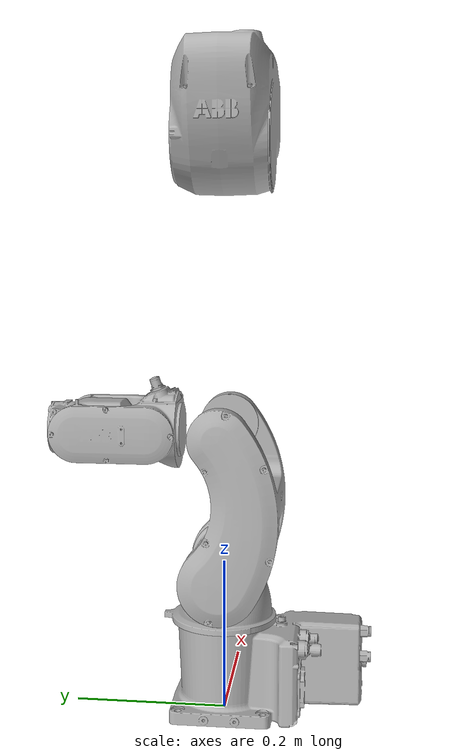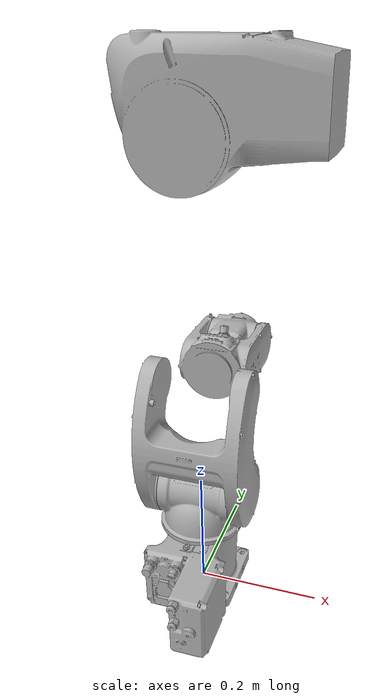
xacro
<?xml version="1.0" ?>
<robot name="IRB1010_1.5kg-370" xmlns:xacro="http://www.ros.org/wiki/xacro">

<xacro:include filename="$(find IRB1010_1.5kg-370_description)/urdf/materials.xacro" />
<xacro:include filename="$(find IRB1010_1.5kg-370_description)/urdf/IRB1010_1.5kg-370.trans" />
<xacro:include filename="$(find IRB1010_1.5kg-370_description)/urdf/IRB1010_1.5kg-370.gazebo" />
<link name="base_link">
  <inertial>
    <origin xyz="0.007414978279902329 -0.0483132373536217 0.05950830185044145" rpy="0 0 0"/>
    <mass value="20.582962138924515"/>
    <inertia ixx="0.107334" iyy="0.048566" izz="0.105477" ixy="0.014261" iyz="0.000746" ixz="0.000141"/>
  </inertial>
  <visual>
    <origin xyz="0 0 0" rpy="0 0 0"/>
    <geometry>
      <mesh filename="package://IRB1010_1.5kg-370_description/meshes/base_link.stl" scale="0.001 0.001 0.001"/>
    </geometry>
    <material name="silver"/>
  </visual>
  <collision>
    <origin xyz="0 0 0" rpy="0 0 0"/>
    <geometry>
      <mesh filename="package://IRB1010_1.5kg-370_description/meshes/base_link.stl" scale="0.001 0.001 0.001"/>
    </geometry>
  </collision>
</link>

<link name="link_1_1">
  <inertial>
    <origin xyz="-0.00024503574590826625 -0.002583028745339163 0.052650029534533266" rpy="0 0 0"/>
    <mass value="9.047546395498204"/>
    <inertia ixx="0.015477" iyy="0.01918" izz="0.016762" ixy="2.4e-05" iyz="-0.000571" ixz="9.9e-05"/>
  </inertial>
  <visual>
    <origin xyz="-0.0 -0.0 -0.123" rpy="0 0 0"/>
    <geometry>
      <mesh filename="package://IRB1010_1.5kg-370_description/meshes/link_1_1.stl" scale="0.001 0.001 0.001"/>
    </geometry>
    <material name="silver"/>
  </visual>
  <collision>
    <origin xyz="-0.0 -0.0 -0.123" rpy="0 0 0"/>
    <geometry>
      <mesh filename="package://IRB1010_1.5kg-370_description/meshes/link_1_1.stl" scale="0.001 0.001 0.001"/>
    </geometry>
  </collision>
</link>

<link name="link_2_1">
  <inertial>
    <origin xyz="0.05849881579894817 -0.02078814771909749 0.07983472523577334" rpy="0 0 0"/>
    <mass value="14.853907261172468"/>
    <inertia ixx="0.072736" iyy="0.128501" izz="0.079727" ixy="3.1e-05" iyz="0.002707" ixz="-0.000418"/>
  </inertial>
  <visual>
    <origin xyz="0.0587 -0.0 -0.19" rpy="0 0 0"/>
    <geometry>
      <mesh filename="package://IRB1010_1.5kg-370_description/meshes/link_2_1.stl" scale="0.001 0.001 0.001"/>
    </geometry>
    <material name="silver"/>
  </visual>
  <collision>
    <origin xyz="0.0587 -0.0 -0.19" rpy="0 0 0"/>
    <geometry>
      <mesh filename="package://IRB1010_1.5kg-370_description/meshes/link_2_1.stl" scale="0.001 0.001 0.001"/>
    </geometry>
  </collision>
</link>

<link name="link_3_1">
  <inertial>
    <origin xyz="-0.06095361971698747 -0.006982971041224326 -0.00021860314485278032" rpy="0 0 0"/>
    <mass value="8.779035232978092"/>
    <inertia ixx="0.016453" iyy="0.012623" izz="0.019253" ixy="-1.7e-05" iyz="4.3e-05" ixz="1.6e-05"/>
  </inertial>
  <visual>
    <origin xyz="-0.0608 -0.0 -0.375" rpy="0 0 0"/>
    <geometry>
      <mesh filename="package://IRB1010_1.5kg-370_description/meshes/link_3_1.stl" scale="0.001 0.001 0.001"/>
    </geometry>
    <material name="silver"/>
  </visual>
  <collision>
    <origin xyz="-0.0608 -0.0 -0.375" rpy="0 0 0"/>
    <geometry>
      <mesh filename="package://IRB1010_1.5kg-370_description/meshes/link_3_1.stl" scale="0.001 0.001 0.001"/>
    </geometry>
  </collision>
</link>

<link name="link_4_1">
  <inertial>
    <origin xyz="0.00124114839469878 0.05600882688570899 0.0017302844145893337" rpy="0 0 0"/>
    <mass value="5.919741496574066"/>
    <inertia ixx="0.013488" iyy="0.011685" izz="0.019333" ixy="-0.000232" iyz="0.000248" ixz="1e-06"/>
  </inertial>
  <visual>
    <origin xyz="-0.0 -0.0553 -0.375" rpy="0 0 0"/>
    <geometry>
      <mesh filename="package://IRB1010_1.5kg-370_description/meshes/link_4_1.stl" scale="0.001 0.001 0.001"/>
    </geometry>
    <material name="silver"/>
  </visual>
  <collision>
    <origin xyz="-0.0 -0.0553 -0.375" rpy="0 0 0"/>
    <geometry>
      <mesh filename="package://IRB1010_1.5kg-370_description/meshes/link_4_1.stl" scale="0.001 0.001 0.001"/>
    </geometry>
  </collision>
</link>

<link name="link_5_1">
  <inertial>
    <origin xyz="0.03963987652528898 -0.012652257482868745 0.00014144085383144267" rpy="0 0 0"/>
    <mass value="3.9451158074034915"/>
    <inertia ixx="0.004666" iyy="0.003309" izz="0.00489" ixy="-2.3e-05" iyz="-2.3e-05" ixz="1.6e-05"/>
  </inertial>
  <visual>
    <origin xyz="0.0405 -0.185 -0.375" rpy="0 0 0"/>
    <geometry>
      <mesh filename="package://IRB1010_1.5kg-370_description/meshes/link_5_1.stl" scale="0.001 0.001 0.001"/>
    </geometry>
    <material name="silver"/>
  </visual>
  <collision>
    <origin xyz="0.0405 -0.185 -0.375" rpy="0 0 0"/>
    <geometry>
      <mesh filename="package://IRB1010_1.5kg-370_description/meshes/link_5_1.stl" scale="0.001 0.001 0.001"/>
    </geometry>
  </collision>
</link>

<link name="link_6_1">
  <inertial>
    <origin xyz="-9.780505496374406e-15 -0.0032215722071038955 -2.4780057653162046e-05" rpy="0 0 0"/>
    <mass value="0.18055793093363143"/>
    <inertia ixx="2.8e-05" iyy="4.4e-05" izz="2.8e-05" ixy="0.0" iyz="-0.0" ixz="0.0"/>
  </inertial>
  <visual>
    <origin xyz="-0.0 -0.2233 -0.375" rpy="0 0 0"/>
    <geometry>
      <mesh filename="package://IRB1010_1.5kg-370_description/meshes/link_6_1.stl" scale="0.001 0.001 0.001"/>
    </geometry>
    <material name="silver"/>
  </visual>
  <collision>
    <origin xyz="-0.0 -0.2233 -0.375" rpy="0 0 0"/>
    <geometry>
      <mesh filename="package://IRB1010_1.5kg-370_description/meshes/link_6_1.stl" scale="0.001 0.001 0.001"/>
    </geometry>
  </collision>
</link>

<joint name="j1" type="continuous">
  <origin xyz="0.0 0.0 0.123" rpy="0 0 0"/>
  <parent link="base_link"/>
  <child link="link_1_1"/>
  <axis xyz="0.0 0.0 -1.0"/>
</joint>

<joint name="j2" type="continuous">
  <origin xyz="-0.0587 0.0 0.067" rpy="0 0 0"/>
  <parent link="link_1_1"/>
  <child link="link_2_1"/>
  <axis xyz="-1.0 0.0 0.0"/>
</joint>

<joint name="j3" type="continuous">
  <origin xyz="0.1195 0.0 0.185" rpy="0 0 0"/>
  <parent link="link_2_1"/>
  <child link="link_3_1"/>
  <axis xyz="-1.0 0.0 0.0"/>
</joint>

<joint name="j4" type="continuous">
  <origin xyz="-0.0608 0.0553 0.0" rpy="0 0 0"/>
  <parent link="link_3_1"/>
  <child link="link_4_1"/>
  <axis xyz="0.0 -1.0 0.0"/>
</joint>

<joint name="j5" type="continuous">
  <origin xyz="-0.0405 0.1297 0.0" rpy="0 0 0"/>
  <parent link="link_4_1"/>
  <child link="link_5_1"/>
  <axis xyz="-1.0 0.0 0.0"/>
</joint>

<joint name="j6" type="continuous">
  <origin xyz="0.0405 0.0383 0.0" rpy="0 0 0"/>
  <parent link="link_5_1"/>
  <child link="link_6_1"/>
  <axis xyz="0.0 -1.0 0.0"/>
</joint>

</robot>

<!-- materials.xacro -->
<robot name="IRB1010_1.5kg-370" xmlns:xacro="http://www.ros.org/wiki/xacro" >

<material name="silver">
  <color rgba="0.700 0.700 0.700 1.000"/>
</material>

</robot>

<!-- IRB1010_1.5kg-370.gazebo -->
<robot name="IRB1010_1.5kg-370" xmlns:xacro="http://www.ros.org/wiki/xacro" >

<xacro:property name="body_color" value="Gazebo/Silver" />

<gazebo>
  <plugin name="control" filename="libgazebo_ros_control.so"/>
</gazebo>
<gazebo reference="base_link">
  <material>${body_color}</material>
  <mu1>0.2</mu1>
  <mu2>0.2</mu2>
  <selfCollide>true</selfCollide>
  <gravity>true</gravity>
</gazebo>

<gazebo reference="link_1_1">
  <material>${body_color}</material>
  <mu1>0.2</mu1>
  <mu2>0.2</mu2>
  <selfCollide>true</selfCollide>
</gazebo>

<gazebo reference="link_2_1">
  <material>${body_color}</material>
  <mu1>0.2</mu1>
  <mu2>0.2</mu2>
  <selfCollide>true</selfCollide>
</gazebo>

<gazebo reference="link_3_1">
  <material>${body_color}</material>
  <mu1>0.2</mu1>
  <mu2>0.2</mu2>
  <selfCollide>true</selfCollide>
</gazebo>

<gazebo reference="link_4_1">
  <material>${body_color}</material>
  <mu1>0.2</mu1>
  <mu2>0.2</mu2>
  <selfCollide>true</selfCollide>
</gazebo>

<gazebo reference="link_5_1">
  <material>${body_color}</material>
  <mu1>0.2</mu1>
  <mu2>0.2</mu2>
  <selfCollide>true</selfCollide>
</gazebo>

<gazebo reference="link_6_1">
  <material>${body_color}</material>
  <mu1>0.2</mu1>
  <mu2>0.2</mu2>
  <selfCollide>true</selfCollide>
</gazebo>

</robot>
